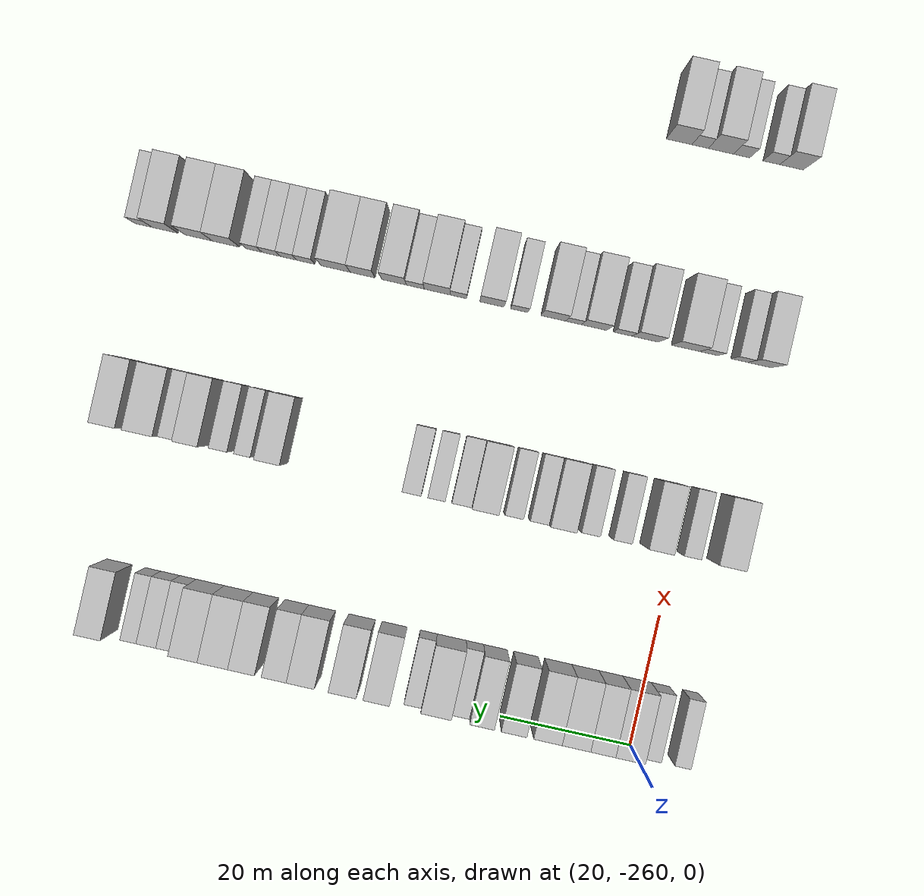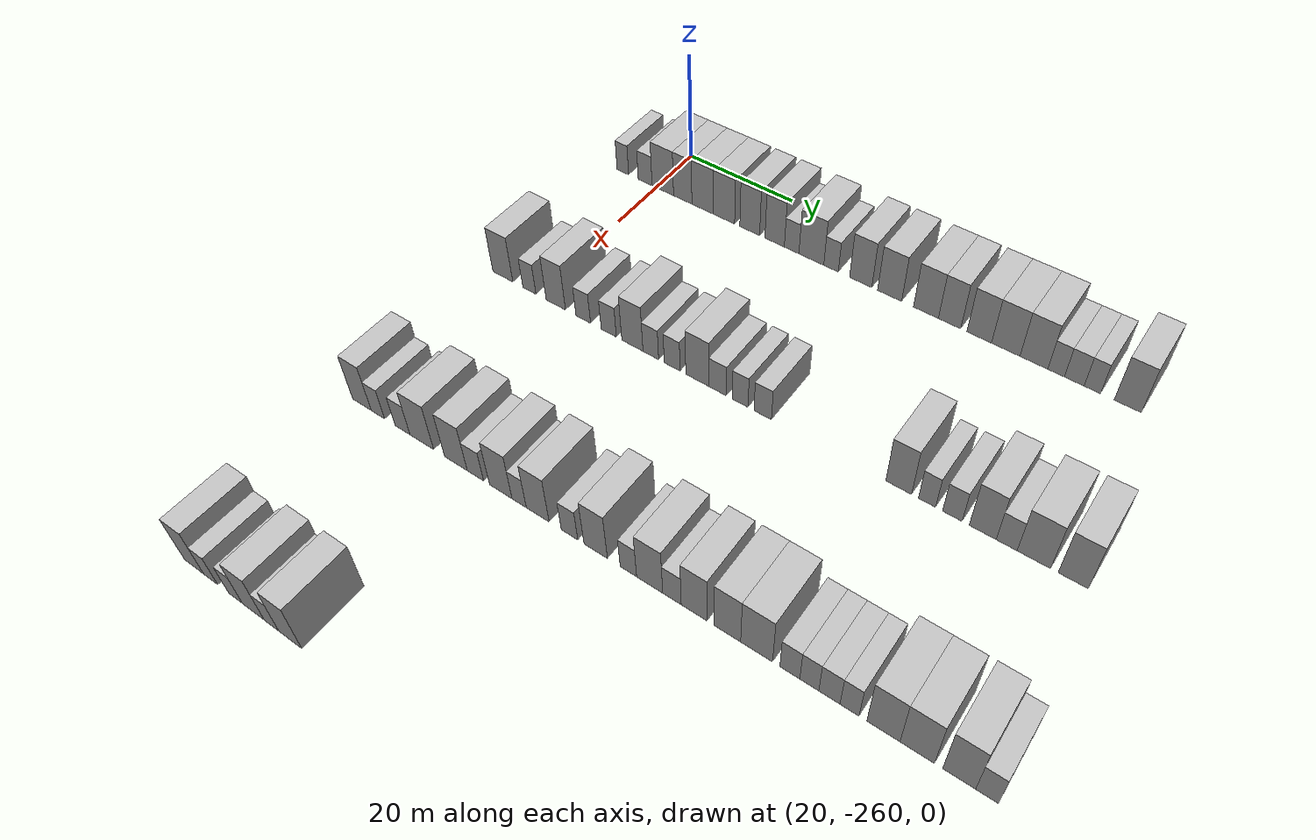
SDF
<sdf version="1.6">
 <world name="default">
  <model name="building_51">
   <static>1</static>
   <pose>25.0000 -266.9102 0 0.000000 0.000000 0.000000</pose>
   <link name="link">
    <pose>0 0 3.00 0 0 0</pose>
    <collision name="collision"><geometry><box><size>10.0000 2.4135 6.0000</size></box></geometry></collision>
    <visual name="visual">
     <cast_shadows>0</cast_shadows>
     <geometry><box><size>10.0000 2.4135 6.0000</size></box></geometry>
     <material>
      <script>
       <uri>model://HANNAS_wall/materials/scripts</uri>
       <uri>model://HANNAS_wall/materials/textures</uri>
       <name>vrc/HANNAS_wall</name>
      </script>
     </material>
    </visual>
   </link>
  </model>
  <model name="building_52">
   <static>1</static>
   <pose>25.0000 -262.2832 0 0.000000 0.000000 0.000000</pose>
   <link name="link">
    <pose>0 0 3.00 0 0 0</pose>
    <collision name="collision"><geometry><box><size>10.0000 2.8406 6.0000</size></box></geometry></collision>
    <visual name="visual">
     <cast_shadows>0</cast_shadows>
     <geometry><box><size>10.0000 2.8406 6.0000</size></box></geometry>
     <material>
      <script>
       <uri>model://HANNAS_wall/materials/scripts</uri>
       <uri>model://HANNAS_wall/materials/textures</uri>
       <name>vrc/HANNAS_wall</name>
      </script>
     </material>
    </visual>
   </link>
  </model>
  <model name="building_53">
   <static>1</static>
   <pose>25.0000 -258.6811 0 0.000000 0.000000 0.000000</pose>
   <link name="link">
    <pose>0 0 4.50 0 0 0</pose>
    <collision name="collision"><geometry><box><size>10.0000 4.3637 9.0000</size></box></geometry></collision>
    <visual name="visual">
     <cast_shadows>0</cast_shadows>
     <geometry><box><size>10.0000 4.3637 9.0000</size></box></geometry>
     <material>
      <script>
       <uri>model://HANNAS_wall/materials/scripts</uri>
       <uri>model://HANNAS_wall/materials/textures</uri>
       <name>vrc/HANNAS_wall</name>
      </script>
     </material>
    </visual>
   </link>
  </model>
  <model name="building_54">
   <static>1</static>
   <pose>25.0000 -254.6666 0 0.000000 0.000000 0.000000</pose>
   <link name="link">
    <pose>0 0 4.50 0 0 0</pose>
    <collision name="collision"><geometry><box><size>10.0000 3.6653 9.0000</size></box></geometry></collision>
    <visual name="visual">
     <cast_shadows>0</cast_shadows>
     <geometry><box><size>10.0000 3.6653 9.0000</size></box></geometry>
     <material>
      <script>
       <uri>model://HANNAS_wall/materials/scripts</uri>
       <uri>model://HANNAS_wall/materials/textures</uri>
       <name>vrc/HANNAS_wall</name>
      </script>
     </material>
    </visual>
   </link>
  </model>
  <model name="building_55">
   <static>1</static>
   <pose>25.0000 -250.7489 0 0.000000 0.000000 0.000000</pose>
   <link name="link">
    <pose>0 0 4.50 0 0 0</pose>
    <collision name="collision"><geometry><box><size>10.0000 4.1701 9.0000</size></box></geometry></collision>
    <visual name="visual">
     <cast_shadows>0</cast_shadows>
     <geometry><box><size>10.0000 4.1701 9.0000</size></box></geometry>
     <material>
      <script>
       <uri>model://HANNAS_wall/materials/scripts</uri>
       <uri>model://HANNAS_wall/materials/textures</uri>
       <name>vrc/HANNAS_wall</name>
      </script>
     </material>
    </visual>
   </link>
  </model>
  <model name="building_56">
   <static>1</static>
   <pose>25.0000 -246.5825 0 0.000000 0.000000 0.000000</pose>
   <link name="link">
    <pose>0 0 4.50 0 0 0</pose>
    <collision name="collision"><geometry><box><size>10.0000 4.1628 9.0000</size></box></geometry></collision>
    <visual name="visual">
     <cast_shadows>0</cast_shadows>
     <geometry><box><size>10.0000 4.1628 9.0000</size></box></geometry>
     <material>
      <script>
       <uri>model://HANNAS_wall/materials/scripts</uri>
       <uri>model://HANNAS_wall/materials/textures</uri>
       <name>vrc/HANNAS_wall</name>
      </script>
     </material>
    </visual>
   </link>
  </model>
  <model name="building_57">
   <static>1</static>
   <pose>25.0000 -241.6280 0 0.000000 0.000000 0.000000</pose>
   <link name="link">
    <pose>0 0 4.50 0 0 0</pose>
    <collision name="collision"><geometry><box><size>10.0000 3.7461 9.0000</size></box></geometry></collision>
    <visual name="visual">
     <cast_shadows>0</cast_shadows>
     <geometry><box><size>10.0000 3.7461 9.0000</size></box></geometry>
     <material>
      <script>
       <uri>model://HANNAS_wall/materials/scripts</uri>
       <uri>model://HANNAS_wall/materials/textures</uri>
       <name>vrc/HANNAS_wall</name>
      </script>
     </material>
    </visual>
   </link>
  </model>
  <model name="building_58">
   <static>1</static>
   <pose>25.0000 -236.9498 0 0.000000 0.000000 0.000000</pose>
   <link name="link">
    <pose>0 0 4.50 0 0 0</pose>
    <collision name="collision"><geometry><box><size>10.0000 3.6103 9.0000</size></box></geometry></collision>
    <visual name="visual">
     <cast_shadows>0</cast_shadows>
     <geometry><box><size>10.0000 3.6103 9.0000</size></box></geometry>
     <material>
      <script>
       <uri>model://HANNAS_wall/materials/scripts</uri>
       <uri>model://HANNAS_wall/materials/textures</uri>
       <name>vrc/HANNAS_wall</name>
      </script>
     </material>
    </visual>
   </link>
  </model>
  <model name="building_59">
   <static>1</static>
   <pose>25.0000 -233.8061 0 0.000000 0.000000 0.000000</pose>
   <link name="link">
    <pose>0 0 3.00 0 0 0</pose>
    <collision name="collision"><geometry><box><size>10.0000 2.6770 6.0000</size></box></geometry></collision>
    <visual name="visual">
     <cast_shadows>0</cast_shadows>
     <geometry><box><size>10.0000 2.6770 6.0000</size></box></geometry>
     <material>
      <script>
       <uri>model://HANNAS_wall/materials/scripts</uri>
       <uri>model://HANNAS_wall/materials/textures</uri>
       <name>vrc/HANNAS_wall</name>
      </script>
     </material>
    </visual>
   </link>
  </model>
  <model name="building_60">
   <static>1</static>
   <pose>25.0000 -230.2214 0 0.000000 0.000000 0.000000</pose>
   <link name="link">
    <pose>0 0 4.50 0 0 0</pose>
    <collision name="collision"><geometry><box><size>10.0000 4.4923 9.0000</size></box></geometry></collision>
    <visual name="visual">
     <cast_shadows>0</cast_shadows>
     <geometry><box><size>10.0000 4.4923 9.0000</size></box></geometry>
     <material>
      <script>
       <uri>model://HANNAS_wall/materials/scripts</uri>
       <uri>model://HANNAS_wall/materials/textures</uri>
       <name>vrc/HANNAS_wall</name>
      </script>
     </material>
    </visual>
   </link>
  </model>
  <model name="building_61">
   <static>1</static>
   <pose>25.0000 -226.6839 0 0.000000 0.000000 0.000000</pose>
   <link name="link">
    <pose>0 0 3.00 0 0 0</pose>
    <collision name="collision"><geometry><box><size>10.0000 2.5828 6.0000</size></box></geometry></collision>
    <visual name="visual">
     <cast_shadows>0</cast_shadows>
     <geometry><box><size>10.0000 2.5828 6.0000</size></box></geometry>
     <material>
      <script>
       <uri>model://HANNAS_wall/materials/scripts</uri>
       <uri>model://HANNAS_wall/materials/textures</uri>
       <name>vrc/HANNAS_wall</name>
      </script>
     </material>
    </visual>
   </link>
  </model>
  <model name="building_62">
   <static>1</static>
   <pose>25.0000 -221.4566 0 0.000000 0.000000 0.000000</pose>
   <link name="link">
    <pose>0 0 4.50 0 0 0</pose>
    <collision name="collision"><geometry><box><size>10.0000 3.8716 9.0000</size></box></geometry></collision>
    <visual name="visual">
     <cast_shadows>0</cast_shadows>
     <geometry><box><size>10.0000 3.8716 9.0000</size></box></geometry>
     <material>
      <script>
       <uri>model://HANNAS_wall/materials/scripts</uri>
       <uri>model://HANNAS_wall/materials/textures</uri>
       <name>vrc/HANNAS_wall</name>
      </script>
     </material>
    </visual>
   </link>
  </model>
  <model name="building_63">
   <static>1</static>
   <pose>25.0000 -216.4686 0 0.000000 0.000000 0.000000</pose>
   <link name="link">
    <pose>0 0 4.50 0 0 0</pose>
    <collision name="collision"><geometry><box><size>10.0000 4.1044 9.0000</size></box></geometry></collision>
    <visual name="visual">
     <cast_shadows>0</cast_shadows>
     <geometry><box><size>10.0000 4.1044 9.0000</size></box></geometry>
     <material>
      <script>
       <uri>model://HANNAS_wall/materials/scripts</uri>
       <uri>model://HANNAS_wall/materials/textures</uri>
       <name>vrc/HANNAS_wall</name>
      </script>
     </material>
    </visual>
   </link>
  </model>
  <model name="building_64">
   <static>1</static>
   <pose>25.0000 -210.3532 0 0.000000 0.000000 0.000000</pose>
   <link name="link">
    <pose>0 0 4.50 0 0 0</pose>
    <collision name="collision"><geometry><box><size>10.0000 4.1262 9.0000</size></box></geometry></collision>
    <visual name="visual">
     <cast_shadows>0</cast_shadows>
     <geometry><box><size>10.0000 4.1262 9.0000</size></box></geometry>
     <material>
      <script>
       <uri>model://HANNAS_wall/materials/scripts</uri>
       <uri>model://HANNAS_wall/materials/textures</uri>
       <name>vrc/HANNAS_wall</name>
      </script>
     </material>
    </visual>
   </link>
  </model>
  <model name="building_65">
   <static>1</static>
   <pose>25.0000 -206.4714 0 0.000000 0.000000 0.000000</pose>
   <link name="link">
    <pose>0 0 4.50 0 0 0</pose>
    <collision name="collision"><geometry><box><size>10.0000 3.6374 9.0000</size></box></geometry></collision>
    <visual name="visual">
     <cast_shadows>0</cast_shadows>
     <geometry><box><size>10.0000 3.6374 9.0000</size></box></geometry>
     <material>
      <script>
       <uri>model://HANNAS_wall/materials/scripts</uri>
       <uri>model://HANNAS_wall/materials/textures</uri>
       <name>vrc/HANNAS_wall</name>
      </script>
     </material>
    </visual>
   </link>
  </model>
  <model name="building_66">
   <static>1</static>
   <pose>25.0000 -201.6870 0 0.000000 0.000000 0.000000</pose>
   <link name="link">
    <pose>0 0 4.50 0 0 0</pose>
    <collision name="collision"><geometry><box><size>10.0000 3.9314 9.0000</size></box></geometry></collision>
    <visual name="visual">
     <cast_shadows>0</cast_shadows>
     <geometry><box><size>10.0000 3.9314 9.0000</size></box></geometry>
     <material>
      <script>
       <uri>model://HANNAS_wall/materials/scripts</uri>
       <uri>model://HANNAS_wall/materials/textures</uri>
       <name>vrc/HANNAS_wall</name>
      </script>
     </material>
    </visual>
   </link>
  </model>
  <model name="building_67">
   <static>1</static>
   <pose>25.0000 -197.4890 0 0.000000 0.000000 0.000000</pose>
   <link name="link">
    <pose>0 0 4.50 0 0 0</pose>
    <collision name="collision"><geometry><box><size>10.0000 4.4646 9.0000</size></box></geometry></collision>
    <visual name="visual">
     <cast_shadows>0</cast_shadows>
     <geometry><box><size>10.0000 4.4646 9.0000</size></box></geometry>
     <material>
      <script>
       <uri>model://HANNAS_wall/materials/scripts</uri>
       <uri>model://HANNAS_wall/materials/textures</uri>
       <name>vrc/HANNAS_wall</name>
      </script>
     </material>
    </visual>
   </link>
  </model>
  <model name="building_68">
   <static>1</static>
   <pose>25.0000 -193.1122 0 0.000000 0.000000 0.000000</pose>
   <link name="link">
    <pose>0 0 4.50 0 0 0</pose>
    <collision name="collision"><geometry><box><size>10.0000 4.2891 9.0000</size></box></geometry></collision>
    <visual name="visual">
     <cast_shadows>0</cast_shadows>
     <geometry><box><size>10.0000 4.2891 9.0000</size></box></geometry>
     <material>
      <script>
       <uri>model://HANNAS_wall/materials/scripts</uri>
       <uri>model://HANNAS_wall/materials/textures</uri>
       <name>vrc/HANNAS_wall</name>
      </script>
     </material>
    </visual>
   </link>
  </model>
  <model name="building_69">
   <static>1</static>
   <pose>25.0000 -189.7178 0 0.000000 0.000000 0.000000</pose>
   <link name="link">
    <pose>0 0 3.00 0 0 0</pose>
    <collision name="collision"><geometry><box><size>10.0000 2.4996 6.0000</size></box></geometry></collision>
    <visual name="visual">
     <cast_shadows>0</cast_shadows>
     <geometry><box><size>10.0000 2.4996 6.0000</size></box></geometry>
     <material>
      <script>
       <uri>model://HANNAS_wall/materials/scripts</uri>
       <uri>model://HANNAS_wall/materials/textures</uri>
       <name>vrc/HANNAS_wall</name>
      </script>
     </material>
    </visual>
   </link>
  </model>
  <model name="building_70">
   <static>1</static>
   <pose>25.0000 -186.9958 0 0.000000 0.000000 0.000000</pose>
   <link name="link">
    <pose>0 0 3.00 0 0 0</pose>
    <collision name="collision"><geometry><box><size>10.0000 2.9445 6.0000</size></box></geometry></collision>
    <visual name="visual">
     <cast_shadows>0</cast_shadows>
     <geometry><box><size>10.0000 2.9445 6.0000</size></box></geometry>
     <material>
      <script>
       <uri>model://HANNAS_wall/materials/scripts</uri>
       <uri>model://HANNAS_wall/materials/textures</uri>
       <name>vrc/HANNAS_wall</name>
      </script>
     </material>
    </visual>
   </link>
  </model>
  <model name="building_71">
   <static>1</static>
   <pose>25.0000 -184.3144 0 0.000000 0.000000 0.000000</pose>
   <link name="link">
    <pose>0 0 3.00 0 0 0</pose>
    <collision name="collision"><geometry><box><size>10.0000 2.4183 6.0000</size></box></geometry></collision>
    <visual name="visual">
     <cast_shadows>0</cast_shadows>
     <geometry><box><size>10.0000 2.4183 6.0000</size></box></geometry>
     <material>
      <script>
       <uri>model://HANNAS_wall/materials/scripts</uri>
       <uri>model://HANNAS_wall/materials/textures</uri>
       <name>vrc/HANNAS_wall</name>
      </script>
     </material>
    </visual>
   </link>
  </model>
  <model name="building_72">
   <static>1</static>
   <pose>25.0000 -179.1507 0 0.000000 0.000000 0.000000</pose>
   <link name="link">
    <pose>0 0 4.50 0 0 0</pose>
    <collision name="collision"><geometry><box><size>10.0000 3.9091 9.0000</size></box></geometry></collision>
    <visual name="visual">
     <cast_shadows>0</cast_shadows>
     <geometry><box><size>10.0000 3.9091 9.0000</size></box></geometry>
     <material>
      <script>
       <uri>model://HANNAS_wall/materials/scripts</uri>
       <uri>model://HANNAS_wall/materials/textures</uri>
       <name>vrc/HANNAS_wall</name>
      </script>
     </material>
    </visual>
   </link>
  </model>
  <model name="building_280">
   <static>1</static>
   <pose>55.0000 -266.8966 0 0.000000 0.000000 0.000000</pose>
   <link name="link">
    <pose>0 0 4.50 0 0 0</pose>
    <collision name="collision"><geometry><box><size>10.0000 4.0241 9.0000</size></box></geometry></collision>
    <visual name="visual">
     <cast_shadows>0</cast_shadows>
     <geometry><box><size>10.0000 4.0241 9.0000</size></box></geometry>
     <material>
      <script>
       <uri>model://HANNAS_wall/materials/scripts</uri>
       <uri>model://HANNAS_wall/materials/textures</uri>
       <name>vrc/HANNAS_wall</name>
      </script>
     </material>
    </visual>
   </link>
  </model>
  <model name="building_281">
   <static>1</static>
   <pose>55.0000 -261.5948 0 0.000000 0.000000 0.000000</pose>
   <link name="link">
    <pose>0 0 3.00 0 0 0</pose>
    <collision name="collision"><geometry><box><size>10.0000 2.5795 6.0000</size></box></geometry></collision>
    <visual name="visual">
     <cast_shadows>0</cast_shadows>
     <geometry><box><size>10.0000 2.5795 6.0000</size></box></geometry>
     <material>
      <script>
       <uri>model://HANNAS_wall/materials/scripts</uri>
       <uri>model://HANNAS_wall/materials/textures</uri>
       <name>vrc/HANNAS_wall</name>
      </script>
     </material>
    </visual>
   </link>
  </model>
  <model name="building_282">
   <static>1</static>
   <pose>55.0000 -256.4422 0 0.000000 0.000000 0.000000</pose>
   <link name="link">
    <pose>0 0 4.50 0 0 0</pose>
    <collision name="collision"><geometry><box><size>10.0000 3.7258 9.0000</size></box></geometry></collision>
    <visual name="visual">
     <cast_shadows>0</cast_shadows>
     <geometry><box><size>10.0000 3.7258 9.0000</size></box></geometry>
     <material>
      <script>
       <uri>model://HANNAS_wall/materials/scripts</uri>
       <uri>model://HANNAS_wall/materials/textures</uri>
       <name>vrc/HANNAS_wall</name>
      </script>
     </material>
    </visual>
   </link>
  </model>
  <model name="building_283">
   <static>1</static>
   <pose>55.0000 -251.2010 0 0.000000 0.000000 0.000000</pose>
   <link name="link">
    <pose>0 0 3.00 0 0 0</pose>
    <collision name="collision"><geometry><box><size>10.0000 2.7566 6.0000</size></box></geometry></collision>
    <visual name="visual">
     <cast_shadows>0</cast_shadows>
     <geometry><box><size>10.0000 2.7566 6.0000</size></box></geometry>
     <material>
      <script>
       <uri>model://HANNAS_wall/materials/scripts</uri>
       <uri>model://HANNAS_wall/materials/textures</uri>
       <name>vrc/HANNAS_wall</name>
      </script>
     </material>
    </visual>
   </link>
  </model>
  <model name="building_284">
   <static>1</static>
   <pose>55.0000 -246.4280 0 0.000000 0.000000 0.000000</pose>
   <link name="link">
    <pose>0 0 3.00 0 0 0</pose>
    <collision name="collision"><geometry><box><size>10.0000 2.7895 6.0000</size></box></geometry></collision>
    <visual name="visual">
     <cast_shadows>0</cast_shadows>
     <geometry><box><size>10.0000 2.7895 6.0000</size></box></geometry>
     <material>
      <script>
       <uri>model://HANNAS_wall/materials/scripts</uri>
       <uri>model://HANNAS_wall/materials/textures</uri>
       <name>vrc/HANNAS_wall</name>
      </script>
     </material>
    </visual>
   </link>
  </model>
  <model name="building_285">
   <static>1</static>
   <pose>55.0000 -242.1169 0 0.000000 0.000000 0.000000</pose>
   <link name="link">
    <pose>0 0 4.50 0 0 0</pose>
    <collision name="collision"><geometry><box><size>10.0000 3.8327 9.0000</size></box></geometry></collision>
    <visual name="visual">
     <cast_shadows>0</cast_shadows>
     <geometry><box><size>10.0000 3.8327 9.0000</size></box></geometry>
     <material>
      <script>
       <uri>model://HANNAS_wall/materials/scripts</uri>
       <uri>model://HANNAS_wall/materials/textures</uri>
       <name>vrc/HANNAS_wall</name>
      </script>
     </material>
    </visual>
   </link>
  </model>
  <model name="building_286">
   <static>1</static>
   <pose>55.0000 -238.8051 0 0.000000 0.000000 0.000000</pose>
   <link name="link">
    <pose>0 0 3.00 0 0 0</pose>
    <collision name="collision"><geometry><box><size>10.0000 2.7909 6.0000</size></box></geometry></collision>
    <visual name="visual">
     <cast_shadows>0</cast_shadows>
     <geometry><box><size>10.0000 2.7909 6.0000</size></box></geometry>
     <material>
      <script>
       <uri>model://HANNAS_wall/materials/scripts</uri>
       <uri>model://HANNAS_wall/materials/textures</uri>
       <name>vrc/HANNAS_wall</name>
      </script>
     </material>
    </visual>
   </link>
  </model>
  <model name="building_287">
   <static>1</static>
   <pose>55.0000 -235.0238 0 0.000000 0.000000 0.000000</pose>
   <link name="link">
    <pose>0 0 3.00 0 0 0</pose>
    <collision name="collision"><geometry><box><size>10.0000 2.7717 6.0000</size></box></geometry></collision>
    <visual name="visual">
     <cast_shadows>0</cast_shadows>
     <geometry><box><size>10.0000 2.7717 6.0000</size></box></geometry>
     <material>
      <script>
       <uri>model://HANNAS_wall/materials/scripts</uri>
       <uri>model://HANNAS_wall/materials/textures</uri>
       <name>vrc/HANNAS_wall</name>
      </script>
     </material>
    </visual>
   </link>
  </model>
  <model name="building_288">
   <static>1</static>
   <pose>55.0000 -230.6613 0 0.000000 0.000000 0.000000</pose>
   <link name="link">
    <pose>0 0 4.50 0 0 0</pose>
    <collision name="collision"><geometry><box><size>10.0000 3.9533 9.0000</size></box></geometry></collision>
    <visual name="visual">
     <cast_shadows>0</cast_shadows>
     <geometry><box><size>10.0000 3.9533 9.0000</size></box></geometry>
     <material>
      <script>
       <uri>model://HANNAS_wall/materials/scripts</uri>
       <uri>model://HANNAS_wall/materials/textures</uri>
       <name>vrc/HANNAS_wall</name>
      </script>
     </material>
    </visual>
   </link>
  </model>
  <model name="building_289">
   <static>1</static>
   <pose>55.0000 -227.2043 0 0.000000 0.000000 0.000000</pose>
   <link name="link">
    <pose>0 0 3.00 0 0 0</pose>
    <collision name="collision"><geometry><box><size>10.0000 2.9607 6.0000</size></box></geometry></collision>
    <visual name="visual">
     <cast_shadows>0</cast_shadows>
     <geometry><box><size>10.0000 2.9607 6.0000</size></box></geometry>
     <material>
      <script>
       <uri>model://HANNAS_wall/materials/scripts</uri>
       <uri>model://HANNAS_wall/materials/textures</uri>
       <name>vrc/HANNAS_wall</name>
      </script>
     </material>
    </visual>
   </link>
  </model>
  <model name="building_290">
   <static>1</static>
   <pose>55.0000 -223.4202 0 0.000000 0.000000 0.000000</pose>
   <link name="link">
    <pose>0 0 3.00 0 0 0</pose>
    <collision name="collision"><geometry><box><size>10.0000 2.6075 6.0000</size></box></geometry></collision>
    <visual name="visual">
     <cast_shadows>0</cast_shadows>
     <geometry><box><size>10.0000 2.6075 6.0000</size></box></geometry>
     <material>
      <script>
       <uri>model://HANNAS_wall/materials/scripts</uri>
       <uri>model://HANNAS_wall/materials/textures</uri>
       <name>vrc/HANNAS_wall</name>
      </script>
     </material>
    </visual>
   </link>
  </model>
  <model name="building_291">
   <static>1</static>
   <pose>55.0000 -219.6993 0 0.000000 0.000000 0.000000</pose>
   <link name="link">
    <pose>0 0 3.00 0 0 0</pose>
    <collision name="collision"><geometry><box><size>10.0000 2.8342 6.0000</size></box></geometry></collision>
    <visual name="visual">
     <cast_shadows>0</cast_shadows>
     <geometry><box><size>10.0000 2.8342 6.0000</size></box></geometry>
     <material>
      <script>
       <uri>model://HANNAS_wall/materials/scripts</uri>
       <uri>model://HANNAS_wall/materials/textures</uri>
       <name>vrc/HANNAS_wall</name>
      </script>
     </material>
    </visual>
   </link>
  </model>
  <model name="building_292">
   <static>1</static>
   <pose>55.0000 -198.6000 0 0.000000 0.000000 0.000000</pose>
   <link name="link">
    <pose>0 0 4.50 0 0 0</pose>
    <collision name="collision"><geometry><box><size>10.0000 3.7882 9.0000</size></box></geometry></collision>
    <visual name="visual">
     <cast_shadows>0</cast_shadows>
     <geometry><box><size>10.0000 3.7882 9.0000</size></box></geometry>
     <material>
      <script>
       <uri>model://HANNAS_wall/materials/scripts</uri>
       <uri>model://HANNAS_wall/materials/textures</uri>
       <name>vrc/HANNAS_wall</name>
      </script>
     </material>
    </visual>
   </link>
  </model>
  <model name="building_293">
   <static>1</static>
   <pose>55.0000 -194.4678 0 0.000000 0.000000 0.000000</pose>
   <link name="link">
    <pose>0 0 3.00 0 0 0</pose>
    <collision name="collision"><geometry><box><size>10.0000 2.4762 6.0000</size></box></geometry></collision>
    <visual name="visual">
     <cast_shadows>0</cast_shadows>
     <geometry><box><size>10.0000 2.4762 6.0000</size></box></geometry>
     <material>
      <script>
       <uri>model://HANNAS_wall/materials/scripts</uri>
       <uri>model://HANNAS_wall/materials/textures</uri>
       <name>vrc/HANNAS_wall</name>
      </script>
     </material>
    </visual>
   </link>
  </model>
  <model name="building_294">
   <static>1</static>
   <pose>55.0000 -190.8467 0 0.000000 0.000000 0.000000</pose>
   <link name="link">
    <pose>0 0 3.00 0 0 0</pose>
    <collision name="collision"><geometry><box><size>10.0000 2.7660 6.0000</size></box></geometry></collision>
    <visual name="visual">
     <cast_shadows>0</cast_shadows>
     <geometry><box><size>10.0000 2.7660 6.0000</size></box></geometry>
     <material>
      <script>
       <uri>model://HANNAS_wall/materials/scripts</uri>
       <uri>model://HANNAS_wall/materials/textures</uri>
       <name>vrc/HANNAS_wall</name>
      </script>
     </material>
    </visual>
   </link>
  </model>
  <model name="building_295">
   <static>1</static>
   <pose>55.0000 -186.5947 0 0.000000 0.000000 0.000000</pose>
   <link name="link">
    <pose>0 0 4.50 0 0 0</pose>
    <collision name="collision"><geometry><box><size>10.0000 3.7378 9.0000</size></box></geometry></collision>
    <visual name="visual">
     <cast_shadows>0</cast_shadows>
     <geometry><box><size>10.0000 3.7378 9.0000</size></box></geometry>
     <material>
      <script>
       <uri>model://HANNAS_wall/materials/scripts</uri>
       <uri>model://HANNAS_wall/materials/textures</uri>
       <name>vrc/HANNAS_wall</name>
      </script>
     </material>
    </visual>
   </link>
  </model>
  <model name="building_296">
   <static>1</static>
   <pose>55.0000 -183.2983 0 0.000000 0.000000 0.000000</pose>
   <link name="link">
    <pose>0 0 3.00 0 0 0</pose>
    <collision name="collision"><geometry><box><size>10.0000 2.8550 6.0000</size></box></geometry></collision>
    <visual name="visual">
     <cast_shadows>0</cast_shadows>
     <geometry><box><size>10.0000 2.8550 6.0000</size></box></geometry>
     <material>
      <script>
       <uri>model://HANNAS_wall/materials/scripts</uri>
       <uri>model://HANNAS_wall/materials/textures</uri>
       <name>vrc/HANNAS_wall</name>
      </script>
     </material>
    </visual>
   </link>
  </model>
  <model name="building_297">
   <static>1</static>
   <pose>55.0000 -179.6341 0 0.000000 0.000000 0.000000</pose>
   <link name="link">
    <pose>0 0 4.50 0 0 0</pose>
    <collision name="collision"><geometry><box><size>10.0000 4.4734 9.0000</size></box></geometry></collision>
    <visual name="visual">
     <cast_shadows>0</cast_shadows>
     <geometry><box><size>10.0000 4.4734 9.0000</size></box></geometry>
     <material>
      <script>
       <uri>model://HANNAS_wall/materials/scripts</uri>
       <uri>model://HANNAS_wall/materials/textures</uri>
       <name>vrc/HANNAS_wall</name>
      </script>
     </material>
    </visual>
   </link>
  </model>
  <model name="building_298">
   <static>1</static>
   <pose>55.0000 -174.4406 0 0.000000 0.000000 0.000000</pose>
   <link name="link">
    <pose>0 0 4.50 0 0 0</pose>
    <collision name="collision"><geometry><box><size>10.0000 3.9136 9.0000</size></box></geometry></collision>
    <visual name="visual">
     <cast_shadows>0</cast_shadows>
     <geometry><box><size>10.0000 3.9136 9.0000</size></box></geometry>
     <material>
      <script>
       <uri>model://HANNAS_wall/materials/scripts</uri>
       <uri>model://HANNAS_wall/materials/textures</uri>
       <name>vrc/HANNAS_wall</name>
      </script>
     </material>
    </visual>
   </link>
  </model>
  <model name="building_505">
   <static>1</static>
   <pose>85.0000 -266.1535 0 0.000000 0.000000 0.000000</pose>
   <link name="link">
    <pose>0 0 4.50 0 0 0</pose>
    <collision name="collision"><geometry><box><size>10.0000 3.6173 9.0000</size></box></geometry></collision>
    <visual name="visual">
     <cast_shadows>0</cast_shadows>
     <geometry><box><size>10.0000 3.6173 9.0000</size></box></geometry>
     <material>
      <script>
       <uri>model://HANNAS_wall/materials/scripts</uri>
       <uri>model://HANNAS_wall/materials/textures</uri>
       <name>vrc/HANNAS_wall</name>
      </script>
     </material>
    </visual>
   </link>
  </model>
  <model name="building_506">
   <static>1</static>
   <pose>85.0000 -263.0730 0 0.000000 0.000000 0.000000</pose>
   <link name="link">
    <pose>0 0 3.00 0 0 0</pose>
    <collision name="collision"><geometry><box><size>10.0000 2.5435 6.0000</size></box></geometry></collision>
    <visual name="visual">
     <cast_shadows>0</cast_shadows>
     <geometry><box><size>10.0000 2.5435 6.0000</size></box></geometry>
     <material>
      <script>
       <uri>model://HANNAS_wall/materials/scripts</uri>
       <uri>model://HANNAS_wall/materials/textures</uri>
       <name>vrc/HANNAS_wall</name>
      </script>
     </material>
    </visual>
   </link>
  </model>
  <model name="building_507">
   <static>1</static>
   <pose>85.0000 -258.4003 0 0.000000 0.000000 0.000000</pose>
   <link name="link">
    <pose>0 0 3.00 0 0 0</pose>
    <collision name="collision"><geometry><box><size>10.0000 2.8019 6.0000</size></box></geometry></collision>
    <visual name="visual">
     <cast_shadows>0</cast_shadows>
     <geometry><box><size>10.0000 2.8019 6.0000</size></box></geometry>
     <material>
      <script>
       <uri>model://HANNAS_wall/materials/scripts</uri>
       <uri>model://HANNAS_wall/materials/textures</uri>
       <name>vrc/HANNAS_wall</name>
      </script>
     </material>
    </visual>
   </link>
  </model>
  <model name="building_508">
   <static>1</static>
   <pose>85.0000 -254.8212 0 0.000000 0.000000 0.000000</pose>
   <link name="link">
    <pose>0 0 4.50 0 0 0</pose>
    <collision name="collision"><geometry><box><size>10.0000 4.3563 9.0000</size></box></geometry></collision>
    <visual name="visual">
     <cast_shadows>0</cast_shadows>
     <geometry><box><size>10.0000 4.3563 9.0000</size></box></geometry>
     <material>
      <script>
       <uri>model://HANNAS_wall/materials/scripts</uri>
       <uri>model://HANNAS_wall/materials/textures</uri>
       <name>vrc/HANNAS_wall</name>
      </script>
     </material>
    </visual>
   </link>
  </model>
  <model name="building_509">
   <static>1</static>
   <pose>85.0000 -248.6166 0 0.000000 0.000000 0.000000</pose>
   <link name="link">
    <pose>0 0 4.50 0 0 0</pose>
    <collision name="collision"><geometry><box><size>10.0000 4.0528 9.0000</size></box></geometry></collision>
    <visual name="visual">
     <cast_shadows>0</cast_shadows>
     <geometry><box><size>10.0000 4.0528 9.0000</size></box></geometry>
     <material>
      <script>
       <uri>model://HANNAS_wall/materials/scripts</uri>
       <uri>model://HANNAS_wall/materials/textures</uri>
       <name>vrc/HANNAS_wall</name>
      </script>
     </material>
    </visual>
   </link>
  </model>
  <model name="building_510">
   <static>1</static>
   <pose>85.0000 -245.1396 0 0.000000 0.000000 0.000000</pose>
   <link name="link">
    <pose>0 0 3.00 0 0 0</pose>
    <collision name="collision"><geometry><box><size>10.0000 2.9012 6.0000</size></box></geometry></collision>
    <visual name="visual">
     <cast_shadows>0</cast_shadows>
     <geometry><box><size>10.0000 2.9012 6.0000</size></box></geometry>
     <material>
      <script>
       <uri>model://HANNAS_wall/materials/scripts</uri>
       <uri>model://HANNAS_wall/materials/textures</uri>
       <name>vrc/HANNAS_wall</name>
      </script>
     </material>
    </visual>
   </link>
  </model>
  <model name="building_511">
   <static>1</static>
   <pose>85.0000 -240.7467 0 0.000000 0.000000 0.000000</pose>
   <link name="link">
    <pose>0 0 4.50 0 0 0</pose>
    <collision name="collision"><geometry><box><size>10.0000 3.8844 9.0000</size></box></geometry></collision>
    <visual name="visual">
     <cast_shadows>0</cast_shadows>
     <geometry><box><size>10.0000 3.8844 9.0000</size></box></geometry>
     <material>
      <script>
       <uri>model://HANNAS_wall/materials/scripts</uri>
       <uri>model://HANNAS_wall/materials/textures</uri>
       <name>vrc/HANNAS_wall</name>
      </script>
     </material>
    </visual>
   </link>
  </model>
  <model name="building_512">
   <static>1</static>
   <pose>85.0000 -237.5940 0 0.000000 0.000000 0.000000</pose>
   <link name="link">
    <pose>0 0 3.00 0 0 0</pose>
    <collision name="collision"><geometry><box><size>10.0000 2.4211 6.0000</size></box></geometry></collision>
    <visual name="visual">
     <cast_shadows>0</cast_shadows>
     <geometry><box><size>10.0000 2.4211 6.0000</size></box></geometry>
     <material>
      <script>
       <uri>model://HANNAS_wall/materials/scripts</uri>
       <uri>model://HANNAS_wall/materials/textures</uri>
       <name>vrc/HANNAS_wall</name>
      </script>
     </material>
    </visual>
   </link>
  </model>
  <model name="building_513">
   <static>1</static>
   <pose>85.0000 -234.4798 0 0.000000 0.000000 0.000000</pose>
   <link name="link">
    <pose>0 0 4.50 0 0 0</pose>
    <collision name="collision"><geometry><box><size>10.0000 3.8072 9.0000</size></box></geometry></collision>
    <visual name="visual">
     <cast_shadows>0</cast_shadows>
     <geometry><box><size>10.0000 3.8072 9.0000</size></box></geometry>
     <material>
      <script>
       <uri>model://HANNAS_wall/materials/scripts</uri>
       <uri>model://HANNAS_wall/materials/textures</uri>
       <name>vrc/HANNAS_wall</name>
      </script>
     </material>
    </visual>
   </link>
  </model>
  <model name="building_514">
   <static>1</static>
   <pose>85.0000 -229.2389 0 0.000000 0.000000 0.000000</pose>
   <link name="link">
    <pose>0 0 3.00 0 0 0</pose>
    <collision name="collision"><geometry><box><size>10.0000 2.6746 6.0000</size></box></geometry></collision>
    <visual name="visual">
     <cast_shadows>0</cast_shadows>
     <geometry><box><size>10.0000 2.6746 6.0000</size></box></geometry>
     <material>
      <script>
       <uri>model://HANNAS_wall/materials/scripts</uri>
       <uri>model://HANNAS_wall/materials/textures</uri>
       <name>vrc/HANNAS_wall</name>
      </script>
     </material>
    </visual>
   </link>
  </model>
  <model name="building_515">
   <static>1</static>
   <pose>85.0000 -225.0413 0 0.000000 0.000000 0.000000</pose>
   <link name="link">
    <pose>0 0 4.50 0 0 0</pose>
    <collision name="collision"><geometry><box><size>10.0000 3.7207 9.0000</size></box></geometry></collision>
    <visual name="visual">
     <cast_shadows>0</cast_shadows>
     <geometry><box><size>10.0000 3.7207 9.0000</size></box></geometry>
     <material>
      <script>
       <uri>model://HANNAS_wall/materials/scripts</uri>
       <uri>model://HANNAS_wall/materials/textures</uri>
       <name>vrc/HANNAS_wall</name>
      </script>
     </material>
    </visual>
   </link>
  </model>
  <model name="building_516">
   <static>1</static>
   <pose>85.0000 -219.9112 0 0.000000 0.000000 0.000000</pose>
   <link name="link">
    <pose>0 0 3.00 0 0 0</pose>
    <collision name="collision"><geometry><box><size>10.0000 2.5395 6.0000</size></box></geometry></collision>
    <visual name="visual">
     <cast_shadows>0</cast_shadows>
     <geometry><box><size>10.0000 2.5395 6.0000</size></box></geometry>
     <material>
      <script>
       <uri>model://HANNAS_wall/materials/scripts</uri>
       <uri>model://HANNAS_wall/materials/textures</uri>
       <name>vrc/HANNAS_wall</name>
      </script>
     </material>
    </visual>
   </link>
  </model>
  <model name="building_517">
   <static>1</static>
   <pose>85.0000 -216.6575 0 0.000000 0.000000 0.000000</pose>
   <link name="link">
    <pose>0 0 4.50 0 0 0</pose>
    <collision name="collision"><geometry><box><size>10.0000 3.9678 9.0000</size></box></geometry></collision>
    <visual name="visual">
     <cast_shadows>0</cast_shadows>
     <geometry><box><size>10.0000 3.9678 9.0000</size></box></geometry>
     <material>
      <script>
       <uri>model://HANNAS_wall/materials/scripts</uri>
       <uri>model://HANNAS_wall/materials/textures</uri>
       <name>vrc/HANNAS_wall</name>
      </script>
     </material>
    </visual>
   </link>
  </model>
  <model name="building_518">
   <static>1</static>
   <pose>85.0000 -213.2942 0 0.000000 0.000000 0.000000</pose>
   <link name="link">
    <pose>0 0 3.00 0 0 0</pose>
    <collision name="collision"><geometry><box><size>10.0000 2.7589 6.0000</size></box></geometry></collision>
    <visual name="visual">
     <cast_shadows>0</cast_shadows>
     <geometry><box><size>10.0000 2.7589 6.0000</size></box></geometry>
     <material>
      <script>
       <uri>model://HANNAS_wall/materials/scripts</uri>
       <uri>model://HANNAS_wall/materials/textures</uri>
       <name>vrc/HANNAS_wall</name>
      </script>
     </material>
    </visual>
   </link>
  </model>
  <model name="building_519">
   <static>1</static>
   <pose>85.0000 -210.0188 0 0.000000 0.000000 0.000000</pose>
   <link name="link">
    <pose>0 0 4.50 0 0 0</pose>
    <collision name="collision"><geometry><box><size>10.0000 3.7918 9.0000</size></box></geometry></collision>
    <visual name="visual">
     <cast_shadows>0</cast_shadows>
     <geometry><box><size>10.0000 3.7918 9.0000</size></box></geometry>
     <material>
      <script>
       <uri>model://HANNAS_wall/materials/scripts</uri>
       <uri>model://HANNAS_wall/materials/textures</uri>
       <name>vrc/HANNAS_wall</name>
      </script>
     </material>
    </visual>
   </link>
  </model>
  <model name="building_520">
   <static>1</static>
   <pose>85.0000 -205.2200 0 0.000000 0.000000 0.000000</pose>
   <link name="link">
    <pose>0 0 4.50 0 0 0</pose>
    <collision name="collision"><geometry><box><size>10.0000 3.8060 9.0000</size></box></geometry></collision>
    <visual name="visual">
     <cast_shadows>0</cast_shadows>
     <geometry><box><size>10.0000 3.8060 9.0000</size></box></geometry>
     <material>
      <script>
       <uri>model://HANNAS_wall/materials/scripts</uri>
       <uri>model://HANNAS_wall/materials/textures</uri>
       <name>vrc/HANNAS_wall</name>
      </script>
     </material>
    </visual>
   </link>
  </model>
  <model name="building_521">
   <static>1</static>
   <pose>85.0000 -201.0890 0 0.000000 0.000000 0.000000</pose>
   <link name="link">
    <pose>0 0 4.50 0 0 0</pose>
    <collision name="collision"><geometry><box><size>10.0000 4.4559 9.0000</size></box></geometry></collision>
    <visual name="visual">
     <cast_shadows>0</cast_shadows>
     <geometry><box><size>10.0000 4.4559 9.0000</size></box></geometry>
     <material>
      <script>
       <uri>model://HANNAS_wall/materials/scripts</uri>
       <uri>model://HANNAS_wall/materials/textures</uri>
       <name>vrc/HANNAS_wall</name>
      </script>
     </material>
    </visual>
   </link>
  </model>
  <model name="building_522">
   <static>1</static>
   <pose>85.0000 -196.5059 0 0.000000 0.000000 0.000000</pose>
   <link name="link">
    <pose>0 0 3.00 0 0 0</pose>
    <collision name="collision"><geometry><box><size>10.0000 2.7102 6.0000</size></box></geometry></collision>
    <visual name="visual">
     <cast_shadows>0</cast_shadows>
     <geometry><box><size>10.0000 2.7102 6.0000</size></box></geometry>
     <material>
      <script>
       <uri>model://HANNAS_wall/materials/scripts</uri>
       <uri>model://HANNAS_wall/materials/textures</uri>
       <name>vrc/HANNAS_wall</name>
      </script>
     </material>
    </visual>
   </link>
  </model>
  <model name="building_523">
   <static>1</static>
   <pose>85.0000 -193.8755 0 0.000000 0.000000 0.000000</pose>
   <link name="link">
    <pose>0 0 3.00 0 0 0</pose>
    <collision name="collision"><geometry><box><size>10.0000 2.5506 6.0000</size></box></geometry></collision>
    <visual name="visual">
     <cast_shadows>0</cast_shadows>
     <geometry><box><size>10.0000 2.5506 6.0000</size></box></geometry>
     <material>
      <script>
       <uri>model://HANNAS_wall/materials/scripts</uri>
       <uri>model://HANNAS_wall/materials/textures</uri>
       <name>vrc/HANNAS_wall</name>
      </script>
     </material>
    </visual>
   </link>
  </model>
  <model name="building_524">
   <static>1</static>
   <pose>85.0000 -191.1963 0 0.000000 0.000000 0.000000</pose>
   <link name="link">
    <pose>0 0 3.00 0 0 0</pose>
    <collision name="collision"><geometry><box><size>10.0000 2.8078 6.0000</size></box></geometry></collision>
    <visual name="visual">
     <cast_shadows>0</cast_shadows>
     <geometry><box><size>10.0000 2.8078 6.0000</size></box></geometry>
     <material>
      <script>
       <uri>model://HANNAS_wall/materials/scripts</uri>
       <uri>model://HANNAS_wall/materials/textures</uri>
       <name>vrc/HANNAS_wall</name>
      </script>
     </material>
    </visual>
   </link>
  </model>
  <model name="building_525">
   <static>1</static>
   <pose>85.0000 -188.5560 0 0.000000 0.000000 0.000000</pose>
   <link name="link">
    <pose>0 0 3.00 0 0 0</pose>
    <collision name="collision"><geometry><box><size>10.0000 2.4728 6.0000</size></box></geometry></collision>
    <visual name="visual">
     <cast_shadows>0</cast_shadows>
     <geometry><box><size>10.0000 2.4728 6.0000</size></box></geometry>
     <material>
      <script>
       <uri>model://HANNAS_wall/materials/scripts</uri>
       <uri>model://HANNAS_wall/materials/textures</uri>
       <name>vrc/HANNAS_wall</name>
      </script>
     </material>
    </visual>
   </link>
  </model>
  <model name="building_526">
   <static>1</static>
   <pose>85.0000 -184.2190 0 0.000000 0.000000 0.000000</pose>
   <link name="link">
    <pose>0 0 4.50 0 0 0</pose>
    <collision name="collision"><geometry><box><size>10.0000 4.2011 9.0000</size></box></geometry></collision>
    <visual name="visual">
     <cast_shadows>0</cast_shadows>
     <geometry><box><size>10.0000 4.2011 9.0000</size></box></geometry>
     <material>
      <script>
       <uri>model://HANNAS_wall/materials/scripts</uri>
       <uri>model://HANNAS_wall/materials/textures</uri>
       <name>vrc/HANNAS_wall</name>
      </script>
     </material>
    </visual>
   </link>
  </model>
  <model name="building_527">
   <static>1</static>
   <pose>85.0000 -179.9805 0 0.000000 0.000000 0.000000</pose>
   <link name="link">
    <pose>0 0 4.50 0 0 0</pose>
    <collision name="collision"><geometry><box><size>10.0000 4.2759 9.0000</size></box></geometry></collision>
    <visual name="visual">
     <cast_shadows>0</cast_shadows>
     <geometry><box><size>10.0000 4.2759 9.0000</size></box></geometry>
     <material>
      <script>
       <uri>model://HANNAS_wall/materials/scripts</uri>
       <uri>model://HANNAS_wall/materials/textures</uri>
       <name>vrc/HANNAS_wall</name>
      </script>
     </material>
    </visual>
   </link>
  </model>
  <model name="building_528">
   <static>1</static>
   <pose>85.0000 -174.8651 0 0.000000 0.000000 0.000000</pose>
   <link name="link">
    <pose>0 0 4.50 0 0 0</pose>
    <collision name="collision"><geometry><box><size>10.0000 3.9549 9.0000</size></box></geometry></collision>
    <visual name="visual">
     <cast_shadows>0</cast_shadows>
     <geometry><box><size>10.0000 3.9549 9.0000</size></box></geometry>
     <material>
      <script>
       <uri>model://HANNAS_wall/materials/scripts</uri>
       <uri>model://HANNAS_wall/materials/textures</uri>
       <name>vrc/HANNAS_wall</name>
      </script>
     </material>
    </visual>
   </link>
  </model>
  <model name="building_529">
   <static>1</static>
   <pose>85.0000 -171.5452 0 0.000000 0.000000 0.000000</pose>
   <link name="link">
    <pose>0 0 3.00 0 0 0</pose>
    <collision name="collision"><geometry><box><size>10.0000 2.6850 6.0000</size></box></geometry></collision>
    <visual name="visual">
     <cast_shadows>0</cast_shadows>
     <geometry><box><size>10.0000 2.6850 6.0000</size></box></geometry>
     <material>
      <script>
       <uri>model://HANNAS_wall/materials/scripts</uri>
       <uri>model://HANNAS_wall/materials/textures</uri>
       <name>vrc/HANNAS_wall</name>
      </script>
     </material>
    </visual>
   </link>
  </model>
  <model name="building_736">
   <static>1</static>
   <pose>115.0000 -264.3408 0 0.000000 0.000000 0.000000</pose>
   <link name="link">
    <pose>0 0 4.50 0 0 0</pose>
    <collision name="collision"><geometry><box><size>10.0000 3.6247 9.0000</size></box></geometry></collision>
    <visual name="visual">
     <cast_shadows>0</cast_shadows>
     <geometry><box><size>10.0000 3.6247 9.0000</size></box></geometry>
     <material>
      <script>
       <uri>model://HANNAS_wall/materials/scripts</uri>
       <uri>model://HANNAS_wall/materials/textures</uri>
       <name>vrc/HANNAS_wall</name>
      </script>
     </material>
    </visual>
   </link>
  </model>
  <model name="building_737">
   <static>1</static>
   <pose>115.0000 -261.2375 0 0.000000 0.000000 0.000000</pose>
   <link name="link">
    <pose>0 0 3.00 0 0 0</pose>
    <collision name="collision"><geometry><box><size>10.0000 2.5819 6.0000</size></box></geometry></collision>
    <visual name="visual">
     <cast_shadows>0</cast_shadows>
     <geometry><box><size>10.0000 2.5819 6.0000</size></box></geometry>
     <material>
      <script>
       <uri>model://HANNAS_wall/materials/scripts</uri>
       <uri>model://HANNAS_wall/materials/textures</uri>
       <name>vrc/HANNAS_wall</name>
      </script>
     </material>
    </visual>
   </link>
  </model>
  <model name="building_738">
   <static>1</static>
   <pose>115.0000 -256.6762 0 0.000000 0.000000 0.000000</pose>
   <link name="link">
    <pose>0 0 3.00 0 0 0</pose>
    <collision name="collision"><geometry><box><size>10.0000 2.5405 6.0000</size></box></geometry></collision>
    <visual name="visual">
     <cast_shadows>0</cast_shadows>
     <geometry><box><size>10.0000 2.5405 6.0000</size></box></geometry>
     <material>
      <script>
       <uri>model://HANNAS_wall/materials/scripts</uri>
       <uri>model://HANNAS_wall/materials/textures</uri>
       <name>vrc/HANNAS_wall</name>
      </script>
     </material>
    </visual>
   </link>
  </model>
  <model name="building_739">
   <static>1</static>
   <pose>115.0000 -253.4706 0 0.000000 0.000000 0.000000</pose>
   <link name="link">
    <pose>0 0 4.50 0 0 0</pose>
    <collision name="collision"><geometry><box><size>10.0000 3.8708 9.0000</size></box></geometry></collision>
    <visual name="visual">
     <cast_shadows>0</cast_shadows>
     <geometry><box><size>10.0000 3.8708 9.0000</size></box></geometry>
     <material>
      <script>
       <uri>model://HANNAS_wall/materials/scripts</uri>
       <uri>model://HANNAS_wall/materials/textures</uri>
       <name>vrc/HANNAS_wall</name>
      </script>
     </material>
    </visual>
   </link>
  </model>
  <model name="building_740">
   <static>1</static>
   <pose>115.0000 -250.2820 0 0.000000 0.000000 0.000000</pose>
   <link name="link">
    <pose>0 0 3.00 0 0 0</pose>
    <collision name="collision"><geometry><box><size>10.0000 2.5064 6.0000</size></box></geometry></collision>
    <visual name="visual">
     <cast_shadows>0</cast_shadows>
     <geometry><box><size>10.0000 2.5064 6.0000</size></box></geometry>
     <material>
      <script>
       <uri>model://HANNAS_wall/materials/scripts</uri>
       <uri>model://HANNAS_wall/materials/textures</uri>
       <name>vrc/HANNAS_wall</name>
      </script>
     </material>
    </visual>
   </link>
  </model>
  <model name="building_741">
   <static>1</static>
   <pose>115.0000 -247.0590 0 0.000000 0.000000 0.000000</pose>
   <link name="link">
    <pose>0 0 4.50 0 0 0</pose>
    <collision name="collision"><geometry><box><size>10.0000 3.9396 9.0000</size></box></geometry></collision>
    <visual name="visual">
     <cast_shadows>0</cast_shadows>
     <geometry><box><size>10.0000 3.9396 9.0000</size></box></geometry>
     <material>
      <script>
       <uri>model://HANNAS_wall/materials/scripts</uri>
       <uri>model://HANNAS_wall/materials/textures</uri>
       <name>vrc/HANNAS_wall</name>
      </script>
     </material>
    </visual>
   </link>
  </model>
 </world>
</sdf>
